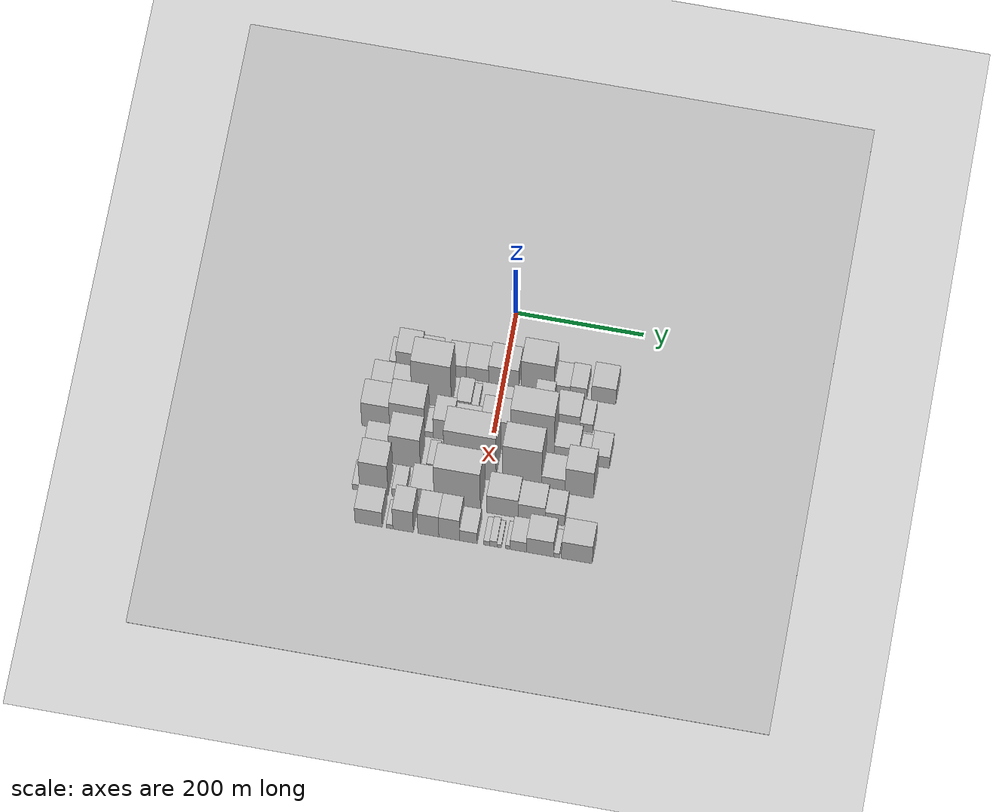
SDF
<sdf version="1.6">
 <world name="default">
  <include><name>ground_plane_1</name><uri>model://HANNAS_ground_plane</uri></include>
  <include>
   <name>ground_plane_2</name>
   <uri>model://HANNAS_ground_plane</uri>
   <pose>100 0 0  0 0 0</pose>
  </include>
  <model name="building_23">
   <static>1</static>
   <pose>100.0000 -173.4580 0 0.000000 0.000000 0.000000</pose>
   <link name="link">
    <pose>0 0 12.00 0 0 0</pose>
    <collision name="collision"><geometry><box><size>40.0000 10.8361 24.0000</size></box></geometry></collision>
    <visual name="visual">
     <cast_shadows>0</cast_shadows>
     <geometry><box><size>40.0000 10.8361 24.0000</size></box></geometry>
     <material>
      <script>
       <uri>model://HANNAS_wall/materials/scripts</uri>
       <uri>model://HANNAS_wall/materials/textures</uri>
       <name>vrc/HANNAS_wall</name>
      </script>
     </material>
    </visual>
   </link>
  </model>
  <model name="building_24">
   <static>1</static>
   <pose>100.0000 -148.9621 0 0.000000 0.000000 0.000000</pose>
   <link name="link">
    <pose>0 0 37.50 0 0 0</pose>
    <collision name="collision"><geometry><box><size>40.0000 38.1556 75.0000</size></box></geometry></collision>
    <visual name="visual">
     <cast_shadows>0</cast_shadows>
     <geometry><box><size>40.0000 38.1556 75.0000</size></box></geometry>
     <material>
      <script>
       <uri>model://HANNAS_wall/materials/scripts</uri>
       <uri>model://HANNAS_wall/materials/textures</uri>
       <name>vrc/HANNAS_wall</name>
      </script>
     </material>
    </visual>
   </link>
  </model>
  <model name="building_25">
   <static>1</static>
   <pose>100.0000 -113.6556 0 0.000000 0.000000 0.000000</pose>
   <link name="link">
    <pose>0 0 30.00 0 0 0</pose>
    <collision name="collision"><geometry><box><size>40.0000 32.4574 60.0000</size></box></geometry></collision>
    <visual name="visual">
     <cast_shadows>0</cast_shadows>
     <geometry><box><size>40.0000 32.4574 60.0000</size></box></geometry>
     <material>
      <script>
       <uri>model://HANNAS_wall/materials/scripts</uri>
       <uri>model://HANNAS_wall/materials/textures</uri>
       <name>vrc/HANNAS_wall</name>
      </script>
     </material>
    </visual>
   </link>
  </model>
  <model name="building_26">
   <static>1</static>
   <pose>100.0000 -72.6445 0 0.000000 0.000000 0.000000</pose>
   <link name="link">
    <pose>0 0 28.50 0 0 0</pose>
    <collision name="collision"><geometry><box><size>40.0000 29.5649 57.0000</size></box></geometry></collision>
    <visual name="visual">
     <cast_shadows>0</cast_shadows>
     <geometry><box><size>40.0000 29.5649 57.0000</size></box></geometry>
     <material>
      <script>
       <uri>model://HANNAS_wall/materials/scripts</uri>
       <uri>model://HANNAS_wall/materials/textures</uri>
       <name>vrc/HANNAS_wall</name>
      </script>
     </material>
    </visual>
   </link>
  </model>
  <model name="building_27">
   <static>1</static>
   <pose>100.0000 -40.1027 0 0.000000 0.000000 0.000000</pose>
   <link name="link">
    <pose>0 0 30.00 0 0 0</pose>
    <collision name="collision"><geometry><box><size>40.0000 35.5187 60.0000</size></box></geometry></collision>
    <visual name="visual">
     <cast_shadows>0</cast_shadows>
     <geometry><box><size>40.0000 35.5187 60.0000</size></box></geometry>
     <material>
      <script>
       <uri>model://HANNAS_wall/materials/scripts</uri>
       <uri>model://HANNAS_wall/materials/textures</uri>
       <name>vrc/HANNAS_wall</name>
      </script>
     </material>
    </visual>
   </link>
  </model>
  <model name="building_28">
   <static>1</static>
   <pose>100.0000 1.4108 0 0.000000 0.000000 0.000000</pose>
   <link name="link">
    <pose>0 0 40.50 0 0 0</pose>
    <collision name="collision"><geometry><box><size>40.0000 47.5083 81.0000</size></box></geometry></collision>
    <visual name="visual">
     <cast_shadows>0</cast_shadows>
     <geometry><box><size>40.0000 47.5083 81.0000</size></box></geometry>
     <material>
      <script>
       <uri>model://HANNAS_wall/materials/scripts</uri>
       <uri>model://HANNAS_wall/materials/textures</uri>
       <name>vrc/HANNAS_wall</name>
      </script>
     </material>
    </visual>
   </link>
  </model>
  <model name="building_29">
   <static>1</static>
   <pose>100.0000 55.0728 0 0.000000 0.000000 0.000000</pose>
   <link name="link">
    <pose>0 0 66.00 0 0 0</pose>
    <collision name="collision"><geometry><box><size>40.0000 51.8157 132.0000</size></box></geometry></collision>
    <visual name="visual">
     <cast_shadows>0</cast_shadows>
     <geometry><box><size>40.0000 51.8157 132.0000</size></box></geometry>
     <material>
      <script>
       <uri>model://HANNAS_wall/materials/scripts</uri>
       <uri>model://HANNAS_wall/materials/textures</uri>
       <name>vrc/HANNAS_wall</name>
      </script>
     </material>
    </visual>
   </link>
  </model>
  <model name="building_30">
   <static>1</static>
   <pose>100.0000 93.5002 0 0.000000 0.000000 0.000000</pose>
   <link name="link">
    <pose>0 0 22.50 0 0 0</pose>
    <collision name="collision"><geometry><box><size>40.0000 25.0390 45.0000</size></box></geometry></collision>
    <visual name="visual">
     <cast_shadows>0</cast_shadows>
     <geometry><box><size>40.0000 25.0390 45.0000</size></box></geometry>
     <material>
      <script>
       <uri>model://HANNAS_wall/materials/scripts</uri>
       <uri>model://HANNAS_wall/materials/textures</uri>
       <name>vrc/HANNAS_wall</name>
      </script>
     </material>
    </visual>
   </link>
  </model>
  <model name="building_31">
   <static>1</static>
   <pose>100.0000 119.2710 0 0.000000 0.000000 0.000000</pose>
   <link name="link">
    <pose>0 0 25.50 0 0 0</pose>
    <collision name="collision"><geometry><box><size>40.0000 26.5027 51.0000</size></box></geometry></collision>
    <visual name="visual">
     <cast_shadows>0</cast_shadows>
     <geometry><box><size>40.0000 26.5027 51.0000</size></box></geometry>
     <material>
      <script>
       <uri>model://HANNAS_wall/materials/scripts</uri>
       <uri>model://HANNAS_wall/materials/textures</uri>
       <name>vrc/HANNAS_wall</name>
      </script>
     </material>
    </visual>
   </link>
  </model>
  <model name="building_32">
   <static>1</static>
   <pose>100.0000 158.8152 0 0.000000 0.000000 0.000000</pose>
   <link name="link">
    <pose>0 0 36.00 0 0 0</pose>
    <collision name="collision"><geometry><box><size>40.0000 38.5856 72.0000</size></box></geometry></collision>
    <visual name="visual">
     <cast_shadows>0</cast_shadows>
     <geometry><box><size>40.0000 38.5856 72.0000</size></box></geometry>
     <material>
      <script>
       <uri>model://HANNAS_wall/materials/scripts</uri>
       <uri>model://HANNAS_wall/materials/textures</uri>
       <name>vrc/HANNAS_wall</name>
      </script>
     </material>
    </visual>
   </link>
  </model>
  <model name="building_72">
   <static>1</static>
   <pose>152.0000 -182.0243 0 0.000000 0.000000 0.000000</pose>
   <link name="link">
    <pose>0 0 28.50 0 0 0</pose>
    <collision name="collision"><geometry><box><size>40.0000 32.9272 57.0000</size></box></geometry></collision>
    <visual name="visual">
     <cast_shadows>0</cast_shadows>
     <geometry><box><size>40.0000 32.9272 57.0000</size></box></geometry>
     <material>
      <script>
       <uri>model://HANNAS_wall/materials/scripts</uri>
       <uri>model://HANNAS_wall/materials/textures</uri>
       <name>vrc/HANNAS_wall</name>
      </script>
     </material>
    </visual>
   </link>
  </model>
  <model name="building_73">
   <static>1</static>
   <pose>152.0000 -149.5915 0 0.000000 0.000000 0.000000</pose>
   <link name="link">
    <pose>0 0 28.50 0 0 0</pose>
    <collision name="collision"><geometry><box><size>40.0000 31.9384 57.0000</size></box></geometry></collision>
    <visual name="visual">
     <cast_shadows>0</cast_shadows>
     <geometry><box><size>40.0000 31.9384 57.0000</size></box></geometry>
     <material>
      <script>
       <uri>model://HANNAS_wall/materials/scripts</uri>
       <uri>model://HANNAS_wall/materials/textures</uri>
       <name>vrc/HANNAS_wall</name>
      </script>
     </material>
    </visual>
   </link>
  </model>
  <model name="building_74">
   <static>1</static>
   <pose>152.0000 -102.5661 0 0.000000 0.000000 0.000000</pose>
   <link name="link">
    <pose>0 0 100.50 0 0 0</pose>
    <collision name="collision"><geometry><box><size>40.0000 62.1123 201.0000</size></box></geometry></collision>
    <visual name="visual">
     <cast_shadows>0</cast_shadows>
     <geometry><box><size>40.0000 62.1123 201.0000</size></box></geometry>
     <material>
      <script>
       <uri>model://HANNAS_wall/materials/scripts</uri>
       <uri>model://HANNAS_wall/materials/textures</uri>
       <name>vrc/HANNAS_wall</name>
      </script>
     </material>
    </visual>
   </link>
  </model>
  <model name="building_75">
   <static>1</static>
   <pose>152.0000 -51.9739 0 0.000000 0.000000 0.000000</pose>
   <link name="link">
    <pose>0 0 22.50 0 0 0</pose>
    <collision name="collision"><geometry><box><size>40.0000 23.0721 45.0000</size></box></geometry></collision>
    <visual name="visual">
     <cast_shadows>0</cast_shadows>
     <geometry><box><size>40.0000 23.0721 45.0000</size></box></geometry>
     <material>
      <script>
       <uri>model://HANNAS_wall/materials/scripts</uri>
       <uri>model://HANNAS_wall/materials/textures</uri>
       <name>vrc/HANNAS_wall</name>
      </script>
     </material>
    </visual>
   </link>
  </model>
  <model name="building_76">
   <static>1</static>
   <pose>152.0000 -34.7064 0 0.000000 0.000000 0.000000</pose>
   <link name="link">
    <pose>0 0 13.50 0 0 0</pose>
    <collision name="collision"><geometry><box><size>40.0000 11.4629 27.0000</size></box></geometry></collision>
    <visual name="visual">
     <cast_shadows>0</cast_shadows>
     <geometry><box><size>40.0000 11.4629 27.0000</size></box></geometry>
     <material>
      <script>
       <uri>model://HANNAS_wall/materials/scripts</uri>
       <uri>model://HANNAS_wall/materials/textures</uri>
       <name>vrc/HANNAS_wall</name>
      </script>
     </material>
    </visual>
   </link>
  </model>
  <model name="building_77">
   <static>1</static>
   <pose>152.0000 43.3466 0 0.000000 0.000000 0.000000</pose>
   <link name="link">
    <pose>0 0 25.50 0 0 0</pose>
    <collision name="collision"><geometry><box><size>40.0000 26.8811 51.0000</size></box></geometry></collision>
    <visual name="visual">
     <cast_shadows>0</cast_shadows>
     <geometry><box><size>40.0000 26.8811 51.0000</size></box></geometry>
     <material>
      <script>
       <uri>model://HANNAS_wall/materials/scripts</uri>
       <uri>model://HANNAS_wall/materials/textures</uri>
       <name>vrc/HANNAS_wall</name>
      </script>
     </material>
    </visual>
   </link>
  </model>
  <model name="building_78">
   <static>1</static>
   <pose>152.0000 71.6934 0 0.000000 0.000000 0.000000</pose>
   <link name="link">
    <pose>0 0 49.50 0 0 0</pose>
    <collision name="collision"><geometry><box><size>40.0000 29.8125 99.0000</size></box></geometry></collision>
    <visual name="visual">
     <cast_shadows>0</cast_shadows>
     <geometry><box><size>40.0000 29.8125 99.0000</size></box></geometry>
     <material>
      <script>
       <uri>model://HANNAS_wall/materials/scripts</uri>
       <uri>model://HANNAS_wall/materials/textures</uri>
       <name>vrc/HANNAS_wall</name>
      </script>
     </material>
    </visual>
   </link>
  </model>
  <model name="building_79">
   <static>1</static>
   <pose>152.0000 111.6881 0 0.000000 0.000000 0.000000</pose>
   <link name="link">
    <pose>0 0 33.00 0 0 0</pose>
    <collision name="collision"><geometry><box><size>40.0000 38.1770 66.0000</size></box></geometry></collision>
    <visual name="visual">
     <cast_shadows>0</cast_shadows>
     <geometry><box><size>40.0000 38.1770 66.0000</size></box></geometry>
     <material>
      <script>
       <uri>model://HANNAS_wall/materials/scripts</uri>
       <uri>model://HANNAS_wall/materials/textures</uri>
       <name>vrc/HANNAS_wall</name>
      </script>
     </material>
    </visual>
   </link>
  </model>
  <model name="building_80">
   <static>1</static>
   <pose>152.0000 141.0211 0 0.000000 0.000000 0.000000</pose>
   <link name="link">
    <pose>0 0 19.50 0 0 0</pose>
    <collision name="collision"><geometry><box><size>40.0000 20.4890 39.0000</size></box></geometry></collision>
    <visual name="visual">
     <cast_shadows>0</cast_shadows>
     <geometry><box><size>40.0000 20.4890 39.0000</size></box></geometry>
     <material>
      <script>
       <uri>model://HANNAS_wall/materials/scripts</uri>
       <uri>model://HANNAS_wall/materials/textures</uri>
       <name>vrc/HANNAS_wall</name>
      </script>
     </material>
    </visual>
   </link>
  </model>
  <model name="building_125">
   <static>1</static>
   <pose>204.0000 -180.7176 0 0.000000 0.000000 0.000000</pose>
   <link name="link">
    <pose>0 0 57.00 0 0 0</pose>
    <collision name="collision"><geometry><box><size>40.0000 43.8968 114.0000</size></box></geometry></collision>
    <visual name="visual">
     <cast_shadows>0</cast_shadows>
     <geometry><box><size>40.0000 43.8968 114.0000</size></box></geometry>
     <material>
      <script>
       <uri>model://HANNAS_wall/materials/scripts</uri>
       <uri>model://HANNAS_wall/materials/textures</uri>
       <name>vrc/HANNAS_wall</name>
      </script>
     </material>
    </visual>
   </link>
  </model>
  <model name="building_126">
   <static>1</static>
   <pose>204.0000 -131.1946 0 0.000000 0.000000 0.000000</pose>
   <link name="link">
    <pose>0 0 69.00 0 0 0</pose>
    <collision name="collision"><geometry><box><size>40.0000 55.1492 138.0000</size></box></geometry></collision>
    <visual name="visual">
     <cast_shadows>0</cast_shadows>
     <geometry><box><size>40.0000 55.1492 138.0000</size></box></geometry>
     <material>
      <script>
       <uri>model://HANNAS_wall/materials/scripts</uri>
       <uri>model://HANNAS_wall/materials/textures</uri>
       <name>vrc/HANNAS_wall</name>
      </script>
     </material>
    </visual>
   </link>
  </model>
  <model name="building_127">
   <static>1</static>
   <pose>204.0000 -96.9513 0 0.000000 0.000000 0.000000</pose>
   <link name="link">
    <pose>0 0 13.50 0 0 0</pose>
    <collision name="collision"><geometry><box><size>40.0000 13.3374 27.0000</size></box></geometry></collision>
    <visual name="visual">
     <cast_shadows>0</cast_shadows>
     <geometry><box><size>40.0000 13.3374 27.0000</size></box></geometry>
     <material>
      <script>
       <uri>model://HANNAS_wall/materials/scripts</uri>
       <uri>model://HANNAS_wall/materials/textures</uri>
       <name>vrc/HANNAS_wall</name>
      </script>
     </material>
    </visual>
   </link>
  </model>
  <model name="building_128">
   <static>1</static>
   <pose>204.0000 -74.5805 0 0.000000 0.000000 0.000000</pose>
   <link name="link">
    <pose>0 0 48.00 0 0 0</pose>
    <collision name="collision"><geometry><box><size>40.0000 31.4042 96.0000</size></box></geometry></collision>
    <visual name="visual">
     <cast_shadows>0</cast_shadows>
     <geometry><box><size>40.0000 31.4042 96.0000</size></box></geometry>
     <material>
      <script>
       <uri>model://HANNAS_wall/materials/scripts</uri>
       <uri>model://HANNAS_wall/materials/textures</uri>
       <name>vrc/HANNAS_wall</name>
      </script>
     </material>
    </visual>
   </link>
  </model>
  <model name="building_129">
   <static>1</static>
   <pose>204.0000 -37.1238 0 0.000000 0.000000 0.000000</pose>
   <link name="link">
    <pose>0 0 37.50 0 0 0</pose>
    <collision name="collision"><geometry><box><size>40.0000 43.5092 75.0000</size></box></geometry></collision>
    <visual name="visual">
     <cast_shadows>0</cast_shadows>
     <geometry><box><size>40.0000 43.5092 75.0000</size></box></geometry>
     <material>
      <script>
       <uri>model://HANNAS_wall/materials/scripts</uri>
       <uri>model://HANNAS_wall/materials/textures</uri>
       <name>vrc/HANNAS_wall</name>
      </script>
     </material>
    </visual>
   </link>
  </model>
  <model name="building_130">
   <static>1</static>
   <pose>204.0000 7.7186 0 0.000000 0.000000 0.000000</pose>
   <link name="link">
    <pose>0 0 69.00 0 0 0</pose>
    <collision name="collision"><geometry><box><size>40.0000 46.1756 138.0000</size></box></geometry></collision>
    <visual name="visual">
     <cast_shadows>0</cast_shadows>
     <geometry><box><size>40.0000 46.1756 138.0000</size></box></geometry>
     <material>
      <script>
       <uri>model://HANNAS_wall/materials/scripts</uri>
       <uri>model://HANNAS_wall/materials/textures</uri>
       <name>vrc/HANNAS_wall</name>
      </script>
     </material>
    </visual>
   </link>
  </model>
  <model name="building_131">
   <static>1</static>
   <pose>204.0000 65.0907 0 0.000000 0.000000 0.000000</pose>
   <link name="link">
    <pose>0 0 105.00 0 0 0</pose>
    <collision name="collision"><geometry><box><size>40.0000 68.5685 210.0000</size></box></geometry></collision>
    <visual name="visual">
     <cast_shadows>0</cast_shadows>
     <geometry><box><size>40.0000 68.5685 210.0000</size></box></geometry>
     <material>
      <script>
       <uri>model://HANNAS_wall/materials/scripts</uri>
       <uri>model://HANNAS_wall/materials/textures</uri>
       <name>vrc/HANNAS_wall</name>
      </script>
     </material>
    </visual>
   </link>
  </model>
  <model name="building_132">
   <static>1</static>
   <pose>204.0000 118.6937 0 0.000000 0.000000 0.000000</pose>
   <link name="link">
    <pose>0 0 33.00 0 0 0</pose>
    <collision name="collision"><geometry><box><size>40.0000 38.6375 66.0000</size></box></geometry></collision>
    <visual name="visual">
     <cast_shadows>0</cast_shadows>
     <geometry><box><size>40.0000 38.6375 66.0000</size></box></geometry>
     <material>
      <script>
       <uri>model://HANNAS_wall/materials/scripts</uri>
       <uri>model://HANNAS_wall/materials/textures</uri>
       <name>vrc/HANNAS_wall</name>
      </script>
     </material>
    </visual>
   </link>
  </model>
  <model name="building_133">
   <static>1</static>
   <pose>204.0000 146.8710 0 0.000000 0.000000 0.000000</pose>
   <link name="link">
    <pose>0 0 15.00 0 0 0</pose>
    <collision name="collision"><geometry><box><size>40.0000 17.7170 30.0000</size></box></geometry></collision>
    <visual name="visual">
     <cast_shadows>0</cast_shadows>
     <geometry><box><size>40.0000 17.7170 30.0000</size></box></geometry>
     <material>
      <script>
       <uri>model://HANNAS_wall/materials/scripts</uri>
       <uri>model://HANNAS_wall/materials/textures</uri>
       <name>vrc/HANNAS_wall</name>
      </script>
     </material>
    </visual>
   </link>
  </model>
  <model name="building_134">
   <static>1</static>
   <pose>204.0000 171.1594 0 0.000000 0.000000 0.000000</pose>
   <link name="link">
    <pose>0 0 27.00 0 0 0</pose>
    <collision name="collision"><geometry><box><size>40.0000 30.8599 54.0000</size></box></geometry></collision>
    <visual name="visual">
     <cast_shadows>0</cast_shadows>
     <geometry><box><size>40.0000 30.8599 54.0000</size></box></geometry>
     <material>
      <script>
       <uri>model://HANNAS_wall/materials/scripts</uri>
       <uri>model://HANNAS_wall/materials/textures</uri>
       <name>vrc/HANNAS_wall</name>
      </script>
     </material>
    </visual>
   </link>
  </model>
  <model name="building_171">
   <static>1</static>
   <pose>256.0000 -169.2510 0 0.000000 0.000000 0.000000</pose>
   <link name="link">
    <pose>0 0 36.00 0 0 0</pose>
    <collision name="collision"><geometry><box><size>40.0000 39.4691 72.0000</size></box></geometry></collision>
    <visual name="visual">
     <cast_shadows>0</cast_shadows>
     <geometry><box><size>40.0000 39.4691 72.0000</size></box></geometry>
     <material>
      <script>
       <uri>model://HANNAS_wall/materials/scripts</uri>
       <uri>model://HANNAS_wall/materials/textures</uri>
       <name>vrc/HANNAS_wall</name>
      </script>
     </material>
    </visual>
   </link>
  </model>
  <model name="building_172">
   <static>1</static>
   <pose>256.0000 -125.2549 0 0.000000 0.000000 0.000000</pose>
   <link name="link">
    <pose>0 0 69.00 0 0 0</pose>
    <collision name="collision"><geometry><box><size>40.0000 48.5230 138.0000</size></box></geometry></collision>
    <visual name="visual">
     <cast_shadows>0</cast_shadows>
     <geometry><box><size>40.0000 48.5230 138.0000</size></box></geometry>
     <material>
      <script>
       <uri>model://HANNAS_wall/materials/scripts</uri>
       <uri>model://HANNAS_wall/materials/textures</uri>
       <name>vrc/HANNAS_wall</name>
      </script>
     </material>
    </visual>
   </link>
  </model>
  <model name="building_173">
   <static>1</static>
   <pose>256.0000 -82.6310 0 0.000000 0.000000 0.000000</pose>
   <link name="link">
    <pose>0 0 15.00 0 0 0</pose>
    <collision name="collision"><geometry><box><size>40.0000 16.7250 30.0000</size></box></geometry></collision>
    <visual name="visual">
     <cast_shadows>0</cast_shadows>
     <geometry><box><size>40.0000 16.7250 30.0000</size></box></geometry>
     <material>
      <script>
       <uri>model://HANNAS_wall/materials/scripts</uri>
       <uri>model://HANNAS_wall/materials/textures</uri>
       <name>vrc/HANNAS_wall</name>
      </script>
     </material>
    </visual>
   </link>
  </model>
  <model name="building_174">
   <static>1</static>
   <pose>256.0000 -68.7638 0 0.000000 0.000000 0.000000</pose>
   <link name="link">
    <pose>0 0 12.00 0 0 0</pose>
    <collision name="collision"><geometry><box><size>40.0000 11.0093 24.0000</size></box></geometry></collision>
    <visual name="visual">
     <cast_shadows>0</cast_shadows>
     <geometry><box><size>40.0000 11.0093 24.0000</size></box></geometry>
     <material>
      <script>
       <uri>model://HANNAS_wall/materials/scripts</uri>
       <uri>model://HANNAS_wall/materials/textures</uri>
       <name>vrc/HANNAS_wall</name>
      </script>
     </material>
    </visual>
   </link>
  </model>
  <model name="building_175">
   <static>1</static>
   <pose>256.0000 -22.6596 0 0.000000 0.000000 0.000000</pose>
   <link name="link">
    <pose>0 0 106.50 0 0 0</pose>
    <collision name="collision"><geometry><box><size>40.0000 81.1991 213.0000</size></box></geometry></collision>
    <visual name="visual">
     <cast_shadows>0</cast_shadows>
     <geometry><box><size>40.0000 81.1991 213.0000</size></box></geometry>
     <material>
      <script>
       <uri>model://HANNAS_wall/materials/scripts</uri>
       <uri>model://HANNAS_wall/materials/textures</uri>
       <name>vrc/HANNAS_wall</name>
      </script>
     </material>
    </visual>
   </link>
  </model>
  <model name="building_176">
   <static>1</static>
   <pose>256.0000 23.0009 0 0.000000 0.000000 0.000000</pose>
   <link name="link">
    <pose>0 0 10.50 0 0 0</pose>
    <collision name="collision"><geometry><box><size>40.0000 10.1221 21.0000</size></box></geometry></collision>
    <visual name="visual">
     <cast_shadows>0</cast_shadows>
     <geometry><box><size>40.0000 10.1221 21.0000</size></box></geometry>
     <material>
      <script>
       <uri>model://HANNAS_wall/materials/scripts</uri>
       <uri>model://HANNAS_wall/materials/textures</uri>
       <name>vrc/HANNAS_wall</name>
      </script>
     </material>
    </visual>
   </link>
  </model>
  <model name="building_177">
   <static>1</static>
   <pose>256.0000 58.6805 0 0.000000 0.000000 0.000000</pose>
   <link name="link">
    <pose>0 0 93.00 0 0 0</pose>
    <collision name="collision"><geometry><box><size>40.0000 61.2370 186.0000</size></box></geometry></collision>
    <visual name="visual">
     <cast_shadows>0</cast_shadows>
     <geometry><box><size>40.0000 61.2370 186.0000</size></box></geometry>
     <material>
      <script>
       <uri>model://HANNAS_wall/materials/scripts</uri>
       <uri>model://HANNAS_wall/materials/textures</uri>
       <name>vrc/HANNAS_wall</name>
      </script>
     </material>
    </visual>
   </link>
  </model>
  <model name="building_178">
   <static>1</static>
   <pose>256.0000 107.6754 0 0.000000 0.000000 0.000000</pose>
   <link name="link">
    <pose>0 0 33.00 0 0 0</pose>
    <collision name="collision"><geometry><box><size>40.0000 36.7529 66.0000</size></box></geometry></collision>
    <visual name="visual">
     <cast_shadows>0</cast_shadows>
     <geometry><box><size>40.0000 36.7529 66.0000</size></box></geometry>
     <material>
      <script>
       <uri>model://HANNAS_wall/materials/scripts</uri>
       <uri>model://HANNAS_wall/materials/textures</uri>
       <name>vrc/HANNAS_wall</name>
      </script>
     </material>
    </visual>
   </link>
  </model>
  <model name="building_179">
   <static>1</static>
   <pose>256.0000 148.3080 0 0.000000 0.000000 0.000000</pose>
   <link name="link">
    <pose>0 0 63.00 0 0 0</pose>
    <collision name="collision"><geometry><box><size>40.0000 44.5122 126.0000</size></box></geometry></collision>
    <visual name="visual">
     <cast_shadows>0</cast_shadows>
     <geometry><box><size>40.0000 44.5122 126.0000</size></box></geometry>
     <material>
      <script>
       <uri>model://HANNAS_wall/materials/scripts</uri>
       <uri>model://HANNAS_wall/materials/textures</uri>
       <name>vrc/HANNAS_wall</name>
      </script>
     </material>
    </visual>
   </link>
  </model>
  <model name="building_220">
   <static>1</static>
   <pose>308.0000 -192.1602 0 0.000000 0.000000 0.000000</pose>
   <link name="link">
    <pose>0 0 13.50 0 0 0</pose>
    <collision name="collision"><geometry><box><size>40.0000 11.7519 27.0000</size></box></geometry></collision>
    <visual name="visual">
     <cast_shadows>0</cast_shadows>
     <geometry><box><size>40.0000 11.7519 27.0000</size></box></geometry>
     <material>
      <script>
       <uri>model://HANNAS_wall/materials/scripts</uri>
       <uri>model://HANNAS_wall/materials/textures</uri>
       <name>vrc/HANNAS_wall</name>
      </script>
     </material>
    </visual>
   </link>
  </model>
  <model name="building_221">
   <static>1</static>
   <pose>308.0000 -163.9890 0 0.000000 0.000000 0.000000</pose>
   <link name="link">
    <pose>0 0 73.50 0 0 0</pose>
    <collision name="collision"><geometry><box><size>40.0000 44.5906 147.0000</size></box></geometry></collision>
    <visual name="visual">
     <cast_shadows>0</cast_shadows>
     <geometry><box><size>40.0000 44.5906 147.0000</size></box></geometry>
     <material>
      <script>
       <uri>model://HANNAS_wall/materials/scripts</uri>
       <uri>model://HANNAS_wall/materials/textures</uri>
       <name>vrc/HANNAS_wall</name>
      </script>
     </material>
    </visual>
   </link>
  </model>
  <model name="building_222">
   <static>1</static>
   <pose>308.0000 -124.8100 0 0.000000 0.000000 0.000000</pose>
   <link name="link">
    <pose>0 0 19.50 0 0 0</pose>
    <collision name="collision"><geometry><box><size>40.0000 21.7674 39.0000</size></box></geometry></collision>
    <visual name="visual">
     <cast_shadows>0</cast_shadows>
     <geometry><box><size>40.0000 21.7674 39.0000</size></box></geometry>
     <material>
      <script>
       <uri>model://HANNAS_wall/materials/scripts</uri>
       <uri>model://HANNAS_wall/materials/textures</uri>
       <name>vrc/HANNAS_wall</name>
      </script>
     </material>
    </visual>
   </link>
  </model>
  <model name="building_223">
   <static>1</static>
   <pose>308.0000 -88.2662 0 0.000000 0.000000 0.000000</pose>
   <link name="link">
    <pose>0 0 31.50 0 0 0</pose>
    <collision name="collision"><geometry><box><size>40.0000 37.3202 63.0000</size></box></geometry></collision>
    <visual name="visual">
     <cast_shadows>0</cast_shadows>
     <geometry><box><size>40.0000 37.3202 63.0000</size></box></geometry>
     <material>
      <script>
       <uri>model://HANNAS_wall/materials/scripts</uri>
       <uri>model://HANNAS_wall/materials/textures</uri>
       <name>vrc/HANNAS_wall</name>
      </script>
     </material>
    </visual>
   </link>
  </model>
  <model name="building_224">
   <static>1</static>
   <pose>308.0000 -33.4326 0 0.000000 0.000000 0.000000</pose>
   <link name="link">
    <pose>0 0 93.00 0 0 0</pose>
    <collision name="collision"><geometry><box><size>40.0000 72.3470 186.0000</size></box></geometry></collision>
    <visual name="visual">
     <cast_shadows>0</cast_shadows>
     <geometry><box><size>40.0000 72.3470 186.0000</size></box></geometry>
     <material>
      <script>
       <uri>model://HANNAS_wall/materials/scripts</uri>
       <uri>model://HANNAS_wall/materials/textures</uri>
       <name>vrc/HANNAS_wall</name>
      </script>
     </material>
    </visual>
   </link>
  </model>
  <model name="building_225">
   <static>1</static>
   <pose>308.0000 37.2971 0 0.000000 0.000000 0.000000</pose>
   <link name="link">
    <pose>0 0 43.50 0 0 0</pose>
    <collision name="collision"><geometry><box><size>40.0000 49.1125 87.0000</size></box></geometry></collision>
    <visual name="visual">
     <cast_shadows>0</cast_shadows>
     <geometry><box><size>40.0000 49.1125 87.0000</size></box></geometry>
     <material>
      <script>
       <uri>model://HANNAS_wall/materials/scripts</uri>
       <uri>model://HANNAS_wall/materials/textures</uri>
       <name>vrc/HANNAS_wall</name>
      </script>
     </material>
    </visual>
   </link>
  </model>
  <model name="building_226">
   <static>1</static>
   <pose>308.0000 82.9499 0 0.000000 0.000000 0.000000</pose>
   <link name="link">
    <pose>0 0 36.00 0 0 0</pose>
    <collision name="collision"><geometry><box><size>40.0000 42.1931 72.0000</size></box></geometry></collision>
    <visual name="visual">
     <cast_shadows>0</cast_shadows>
     <geometry><box><size>40.0000 42.1931 72.0000</size></box></geometry>
     <material>
      <script>
       <uri>model://HANNAS_wall/materials/scripts</uri>
       <uri>model://HANNAS_wall/materials/textures</uri>
       <name>vrc/HANNAS_wall</name>
      </script>
     </material>
    </visual>
   </link>
  </model>
  <model name="building_227">
   <static>1</static>
   <pose>308.0000 119.3010 0 0.000000 0.000000 0.000000</pose>
   <link name="link">
    <pose>0 0 27.00 0 0 0</pose>
    <collision name="collision"><geometry><box><size>40.0000 30.5091 54.0000</size></box></geometry></collision>
    <visual name="visual">
     <cast_shadows>0</cast_shadows>
     <geometry><box><size>40.0000 30.5091 54.0000</size></box></geometry>
     <material>
      <script>
       <uri>model://HANNAS_wall/materials/scripts</uri>
       <uri>model://HANNAS_wall/materials/textures</uri>
       <name>vrc/HANNAS_wall</name>
      </script>
     </material>
    </visual>
   </link>
  </model>
  <model name="building_267">
   <static>1</static>
   <pose>360.0000 -162.4718 0 0.000000 0.000000 0.000000</pose>
   <link name="link">
    <pose>0 0 37.50 0 0 0</pose>
    <collision name="collision"><geometry><box><size>40.0000 42.7166 75.0000</size></box></geometry></collision>
    <visual name="visual">
     <cast_shadows>0</cast_shadows>
     <geometry><box><size>40.0000 42.7166 75.0000</size></box></geometry>
     <material>
      <script>
       <uri>model://HANNAS_wall/materials/scripts</uri>
       <uri>model://HANNAS_wall/materials/textures</uri>
       <name>vrc/HANNAS_wall</name>
      </script>
     </material>
    </visual>
   </link>
  </model>
  <model name="building_268">
   <static>1</static>
   <pose>360.0000 -129.8780 0 0.000000 0.000000 0.000000</pose>
   <link name="link">
    <pose>0 0 10.50 0 0 0</pose>
    <collision name="collision"><geometry><box><size>40.0000 10.4709 21.0000</size></box></geometry></collision>
    <visual name="visual">
     <cast_shadows>0</cast_shadows>
     <geometry><box><size>40.0000 10.4709 21.0000</size></box></geometry>
     <material>
      <script>
       <uri>model://HANNAS_wall/materials/scripts</uri>
       <uri>model://HANNAS_wall/materials/textures</uri>
       <name>vrc/HANNAS_wall</name>
      </script>
     </material>
    </visual>
   </link>
  </model>
  <model name="building_269">
   <static>1</static>
   <pose>360.0000 -108.6150 0 0.000000 0.000000 0.000000</pose>
   <link name="link">
    <pose>0 0 52.50 0 0 0</pose>
    <collision name="collision"><geometry><box><size>40.0000 32.0552 105.0000</size></box></geometry></collision>
    <visual name="visual">
     <cast_shadows>0</cast_shadows>
     <geometry><box><size>40.0000 32.0552 105.0000</size></box></geometry>
     <material>
      <script>
       <uri>model://HANNAS_wall/materials/scripts</uri>
       <uri>model://HANNAS_wall/materials/textures</uri>
       <name>vrc/HANNAS_wall</name>
      </script>
     </material>
    </visual>
   </link>
  </model>
  <model name="building_270">
   <static>1</static>
   <pose>360.0000 -69.1481 0 0.000000 0.000000 0.000000</pose>
   <link name="link">
    <pose>0 0 51.00 0 0 0</pose>
    <collision name="collision"><geometry><box><size>40.0000 32.8787 102.0000</size></box></geometry></collision>
    <visual name="visual">
     <cast_shadows>0</cast_shadows>
     <geometry><box><size>40.0000 32.8787 102.0000</size></box></geometry>
     <material>
      <script>
       <uri>model://HANNAS_wall/materials/scripts</uri>
       <uri>model://HANNAS_wall/materials/textures</uri>
       <name>vrc/HANNAS_wall</name>
      </script>
     </material>
    </visual>
   </link>
  </model>
  <model name="building_271">
   <static>1</static>
   <pose>360.0000 -36.4665 0 0.000000 0.000000 0.000000</pose>
   <link name="link">
    <pose>0 0 51.00 0 0 0</pose>
    <collision name="collision"><geometry><box><size>40.0000 32.4845 102.0000</size></box></geometry></collision>
    <visual name="visual">
     <cast_shadows>0</cast_shadows>
     <geometry><box><size>40.0000 32.4845 102.0000</size></box></geometry>
     <material>
      <script>
       <uri>model://HANNAS_wall/materials/scripts</uri>
       <uri>model://HANNAS_wall/materials/textures</uri>
       <name>vrc/HANNAS_wall</name>
      </script>
     </material>
    </visual>
   </link>
  </model>
  <model name="building_272">
   <static>1</static>
   <pose>360.0000 -6.4123 0 0.000000 0.000000 0.000000</pose>
   <link name="link">
    <pose>0 0 27.00 0 0 0</pose>
    <collision name="collision"><geometry><box><size>40.0000 27.6238 54.0000</size></box></geometry></collision>
    <visual name="visual">
     <cast_shadows>0</cast_shadows>
     <geometry><box><size>40.0000 27.6238 54.0000</size></box></geometry>
     <material>
      <script>
       <uri>model://HANNAS_wall/materials/scripts</uri>
       <uri>model://HANNAS_wall/materials/textures</uri>
       <name>vrc/HANNAS_wall</name>
      </script>
     </material>
    </visual>
   </link>
  </model>
  <model name="building_273">
   <static>1</static>
   <pose>360.0000 22.0694 0 0.000000 0.000000 0.000000</pose>
   <link name="link">
    <pose>0 0 10.50 0 0 0</pose>
    <collision name="collision"><geometry><box><size>40.0000 9.3397 21.0000</size></box></geometry></collision>
    <visual name="visual">
     <cast_shadows>0</cast_shadows>
     <geometry><box><size>40.0000 9.3397 21.0000</size></box></geometry>
     <material>
      <script>
       <uri>model://HANNAS_wall/materials/scripts</uri>
       <uri>model://HANNAS_wall/materials/textures</uri>
       <name>vrc/HANNAS_wall</name>
      </script>
     </material>
    </visual>
   </link>
  </model>
  <model name="building_274">
   <static>1</static>
   <pose>360.0000 32.4379 0 0.000000 0.000000 0.000000</pose>
   <link name="link">
    <pose>0 0 13.50 0 0 0</pose>
    <collision name="collision"><geometry><box><size>40.0000 11.3973 27.0000</size></box></geometry></collision>
    <visual name="visual">
     <cast_shadows>0</cast_shadows>
     <geometry><box><size>40.0000 11.3973 27.0000</size></box></geometry>
     <material>
      <script>
       <uri>model://HANNAS_wall/materials/scripts</uri>
       <uri>model://HANNAS_wall/materials/textures</uri>
       <name>vrc/HANNAS_wall</name>
      </script>
     </material>
    </visual>
   </link>
  </model>
  <model name="building_275">
   <static>1</static>
   <pose>360.0000 41.7461 0 0.000000 0.000000 0.000000</pose>
   <link name="link">
    <pose>0 0 7.50 0 0 0</pose>
    <collision name="collision"><geometry><box><size>40.0000 7.2190 15.0000</size></box></geometry></collision>
    <visual name="visual">
     <cast_shadows>0</cast_shadows>
     <geometry><box><size>40.0000 7.2190 15.0000</size></box></geometry>
     <material>
      <script>
       <uri>model://HANNAS_wall/materials/scripts</uri>
       <uri>model://HANNAS_wall/materials/textures</uri>
       <name>vrc/HANNAS_wall</name>
      </script>
     </material>
    </visual>
   </link>
  </model>
  <model name="building_276">
   <static>1</static>
   <pose>360.0000 55.1951 0 0.000000 0.000000 0.000000</pose>
   <link name="link">
    <pose>0 0 9.00 0 0 0</pose>
    <collision name="collision"><geometry><box><size>40.0000 7.6790 18.0000</size></box></geometry></collision>
    <visual name="visual">
     <cast_shadows>0</cast_shadows>
     <geometry><box><size>40.0000 7.6790 18.0000</size></box></geometry>
     <material>
      <script>
       <uri>model://HANNAS_wall/materials/scripts</uri>
       <uri>model://HANNAS_wall/materials/textures</uri>
       <name>vrc/HANNAS_wall</name>
      </script>
     </material>
    </visual>
   </link>
  </model>
  <model name="building_277">
   <static>1</static>
   <pose>360.0000 71.6177 0 0.000000 0.000000 0.000000</pose>
   <link name="link">
    <pose>0 0 24.00 0 0 0</pose>
    <collision name="collision"><geometry><box><size>40.0000 25.1662 48.0000</size></box></geometry></collision>
    <visual name="visual">
     <cast_shadows>0</cast_shadows>
     <geometry><box><size>40.0000 25.1662 48.0000</size></box></geometry>
     <material>
      <script>
       <uri>model://HANNAS_wall/materials/scripts</uri>
       <uri>model://HANNAS_wall/materials/textures</uri>
       <name>vrc/HANNAS_wall</name>
      </script>
     </material>
    </visual>
   </link>
  </model>
  <model name="building_278">
   <static>1</static>
   <pose>360.0000 105.4302 0 0.000000 0.000000 0.000000</pose>
   <link name="link">
    <pose>0 0 37.50 0 0 0</pose>
    <collision name="collision"><geometry><box><size>40.0000 42.4588 75.0000</size></box></geometry></collision>
    <visual name="visual">
     <cast_shadows>0</cast_shadows>
     <geometry><box><size>40.0000 42.4588 75.0000</size></box></geometry>
     <material>
      <script>
       <uri>model://HANNAS_wall/materials/scripts</uri>
       <uri>model://HANNAS_wall/materials/textures</uri>
       <name>vrc/HANNAS_wall</name>
      </script>
     </material>
    </visual>
   </link>
  </model>
  <model name="building_279">
   <static>1</static>
   <pose>360.0000 131.3214 0 0.000000 0.000000 0.000000</pose>
   <link name="link">
    <pose>0 0 10.50 0 0 0</pose>
    <collision name="collision"><geometry><box><size>40.0000 9.3237 21.0000</size></box></geometry></collision>
    <visual name="visual">
     <cast_shadows>0</cast_shadows>
     <geometry><box><size>40.0000 9.3237 21.0000</size></box></geometry>
     <material>
      <script>
       <uri>model://HANNAS_wall/materials/scripts</uri>
       <uri>model://HANNAS_wall/materials/textures</uri>
       <name>vrc/HANNAS_wall</name>
      </script>
     </material>
    </visual>
   </link>
  </model>
  <model name="building_280">
   <static>1</static>
   <pose>360.0000 163.1147 0 0.000000 0.000000 0.000000</pose>
   <link name="link">
    <pose>0 0 43.50 0 0 0</pose>
    <collision name="collision"><geometry><box><size>40.0000 48.2629 87.0000</size></box></geometry></collision>
    <visual name="visual">
     <cast_shadows>0</cast_shadows>
     <geometry><box><size>40.0000 48.2629 87.0000</size></box></geometry>
     <material>
      <script>
       <uri>model://HANNAS_wall/materials/scripts</uri>
       <uri>model://HANNAS_wall/materials/textures</uri>
       <name>vrc/HANNAS_wall</name>
      </script>
     </material>
    </visual>
   </link>
  </model>
 </world>
</sdf>
